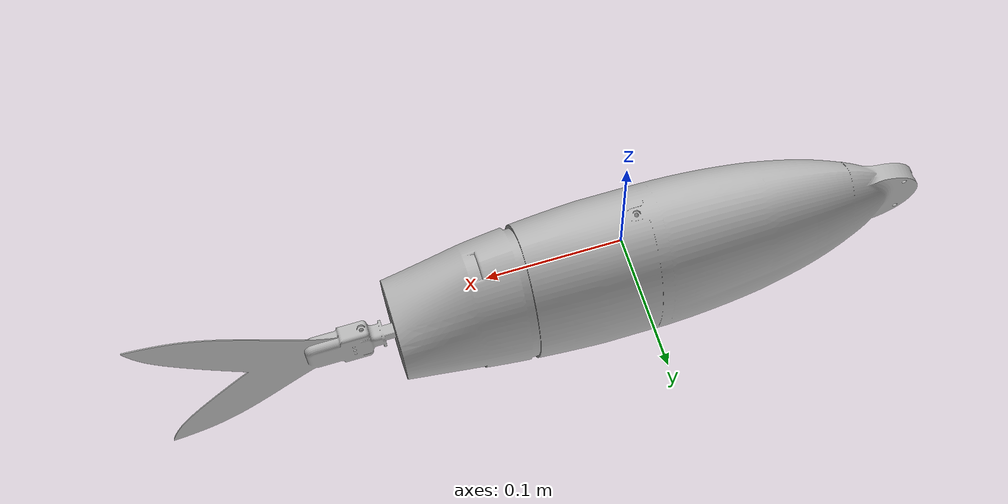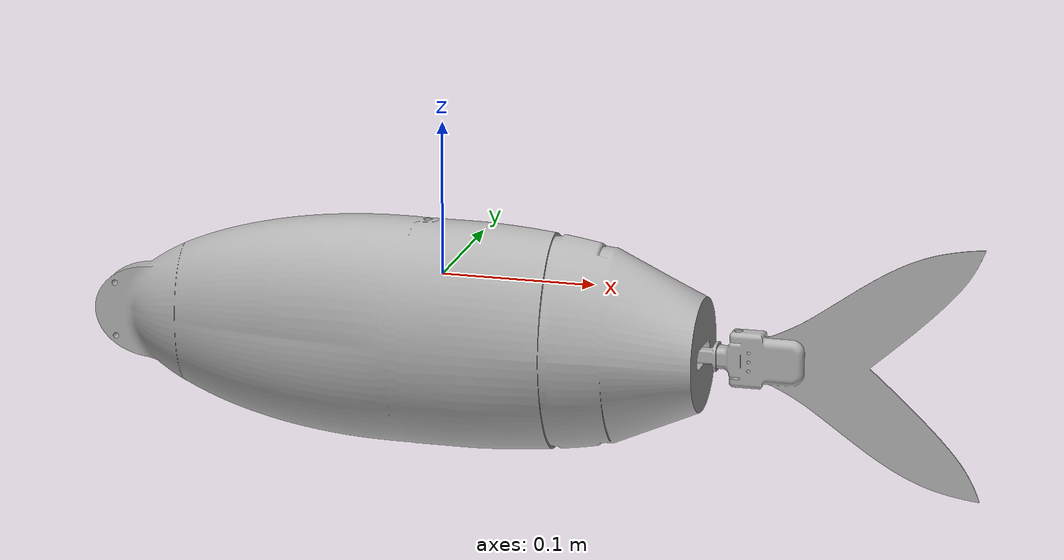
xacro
<?xml version="1.0" ?>
<robot name="RL_SIM_MODE_2" xmlns:xacro="http://www.ros.org/wiki/xacro">

<xacro:include filename="$(find RL_SIM_MODE_2_description)/urdf/materials.xacro" />
<xacro:include filename="$(find RL_SIM_MODE_2_description)/urdf/RL_SIM_MODE_2.trans" />
<xacro:include filename="$(find RL_SIM_MODE_2_description)/urdf/RL_SIM_MODE_2.gazebo" />
<link name="base_link">
  <inertial>
    <origin xyz="0.012282912365453445 7.63710732790047e-05 -0.040495197986768504" rpy="0 0 0"/>
    <mass value="2.4349242520279217"/>
    <inertia ixx="0.005171" iyy="0.031671" izz="0.029391" ixy="1.7e-05" iyz="-1e-06" ixz="-0.000768"/>
  </inertial>
  <visual>
    <origin xyz="0 0 0" rpy="0 0 0"/>
    <geometry>
      <mesh filename="package://RL_SIM_MODE_2_description/meshes/base_link.stl" scale="0.001 0.001 0.001"/>
    </geometry>
    <material name="silver"/>
  </visual>
  <collision>
    <origin xyz="0 0 0" rpy="0 0 0"/>
    <geometry>
      <mesh filename="package://RL_SIM_MODE_2_description/meshes/base_link.stl" scale="0.001 0.001 0.001"/>
    </geometry>
  </collision>
</link>

<link name="tail_link_1_1">
  <inertial>
    <origin xyz="0.07147293341395211 0.0009688759369753741 -0.005351504140492791" rpy="0 0 0"/>
    <mass value="0.09257590043127194"/>
    <inertia ixx="4.5e-05" iyy="0.00024" izz="0.0002" ixy="6e-06" iyz="-0.0" ixz="0.0"/>
  </inertial>
  <visual>
    <origin xyz="-0.144817 0.0 0.03565" rpy="0 0 0"/>
    <geometry>
      <mesh filename="package://RL_SIM_MODE_2_description/meshes/tail_link_1_1.stl" scale="0.001 0.001 0.001"/>
    </geometry>
    <material name="silver"/>
  </visual>
  <collision>
    <origin xyz="-0.144817 0.0 0.03565" rpy="0 0 0"/>
    <geometry>
      <mesh filename="package://RL_SIM_MODE_2_description/meshes/tail_link_1_1.stl" scale="0.001 0.001 0.001"/>
    </geometry>
  </collision>
</link>

<joint name="tail_joint" type="revolute">
  <origin xyz="0.144817 0.0 -0.03565" rpy="0 0 0"/>
  <parent link="base_link"/>
  <child link="tail_link_1_1"/>
  <axis xyz="0.0 0.0 -1.0"/>
  <limit upper="0.349066" lower="-0.349066" effort="100" velocity="100"/>
</joint>

</robot>

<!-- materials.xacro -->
<robot name="RL_SIM_MODE_2" xmlns:xacro="http://www.ros.org/wiki/xacro" >

<material name="silver">
  <color rgba="0.700 0.700 0.700 1.000"/>
</material>

</robot>

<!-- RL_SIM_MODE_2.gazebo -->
<robot name="RL_SIM_MODE_2" xmlns:xacro="http://www.ros.org/wiki/xacro" >

<xacro:property name="body_color" value="Gazebo/Silver" />

<gazebo>
  <plugin name="control" filename="libgazebo_ros_control.so"/>
</gazebo>
<gazebo reference="base_link">
  <material>${body_color}</material>
  <mu1>0.2</mu1>
  <mu2>0.2</mu2>
  <selfCollide>true</selfCollide>
  <gravity>true</gravity>
</gazebo>

<gazebo reference="tail_link_1_1">
  <material>${body_color}</material>
  <mu1>0.2</mu1>
  <mu2>0.2</mu2>
  <selfCollide>true</selfCollide>
</gazebo>

</robot>
